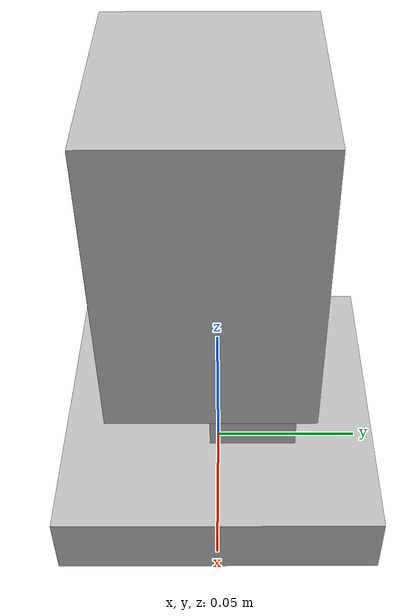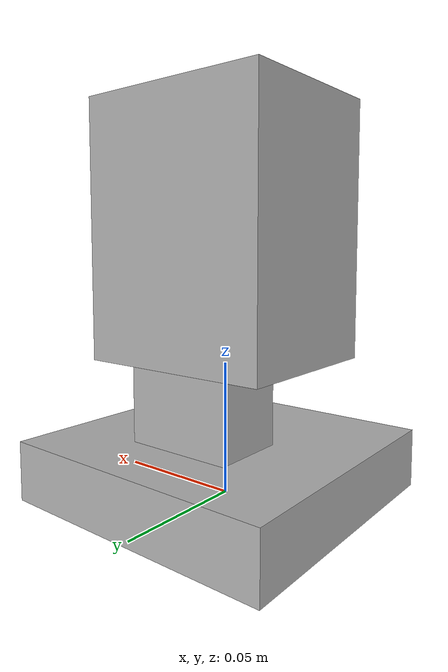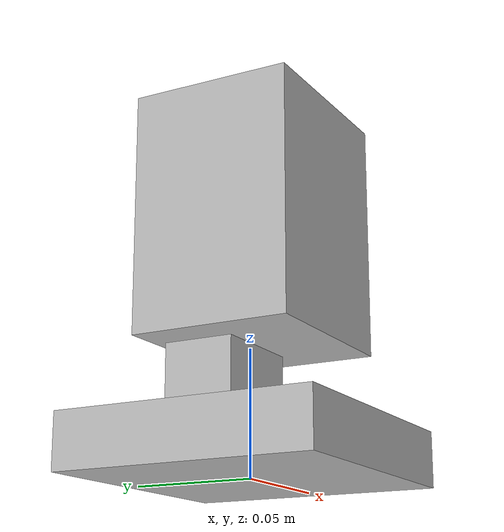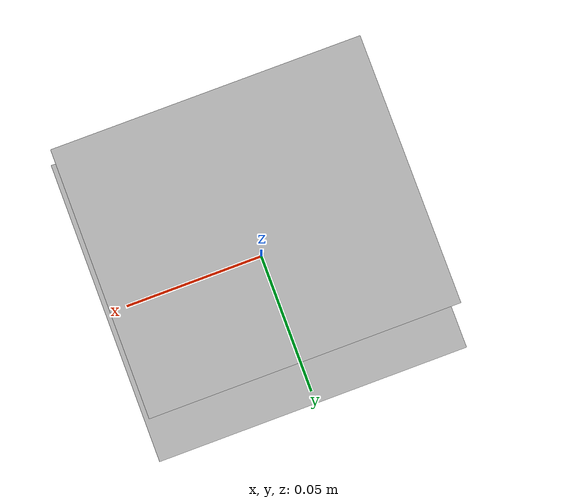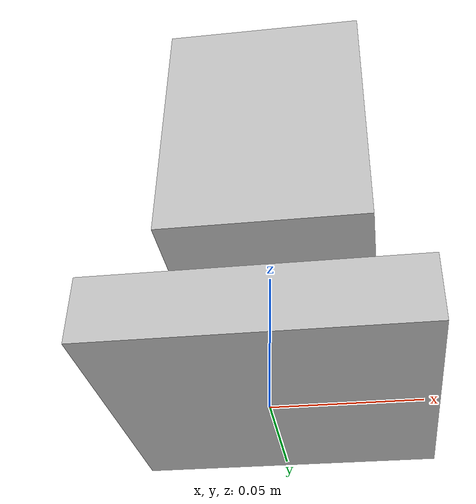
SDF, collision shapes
<?xml version="1.0" ?>
<sdf version="1.6">
  <model name="aws_robomaker_residential_SecurityCamera_01">
    <link name="link">
      <inertial>
        <mass>1</mass>
        <inertia>
          <ixx>18.2222</ixx>
          <ixy>0</ixy>
          <ixz>0</ixz>
          <iyy>18.2222</iyy>
          <iyz>0</iyz>
          <izz>0.0018767</izz>
        </inertia>
      </inertial>
      <collision name="aws_securitycamera_01_collision_collider_box">
        <pose>0.001235 -0.001619 0.099241 1.570796 -0.0 0.0</pose>
        <geometry>
          <box>
            <size>0.074663 0.096176 0.064551</size>
          </box>
        </geometry>
      </collision>
      <collision name="aws_securitycamera_01_collision_collider_box.001">
        <pose>0.001235 0.000319 0.010661 1.570796 -0.0 0.0</pose>
        <geometry>
          <box>
            <size>0.107932 0.022345 0.104272</size>
          </box>
        </geometry>
      </collision>
      <collision name="aws_securitycamera_01_collision_collider_box.002">
        <pose>0.001235 0.011757 0.037228 1.570796 -0.0 0.0</pose>
        <geometry>
          <box>
            <size>0.041894 0.036982 0.028621</size>
          </box>
        </geometry>
      </collision>
      <visual name="visual">
	    <geometry>
          <mesh>
            <uri>model://aws_robomaker_residential_SecurityCamera_01/meshes/aws_SecurityCamera_01_visual.DAE</uri>
          </mesh>
        </geometry>
        <meta>
          <layer>2</layer>
        </meta>
      </visual>
    </link>
  </model>
</sdf>
